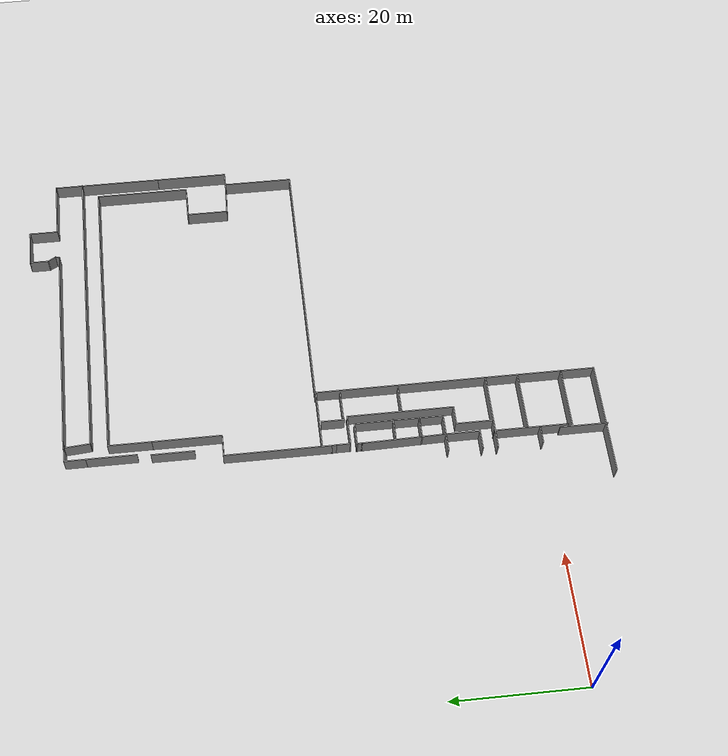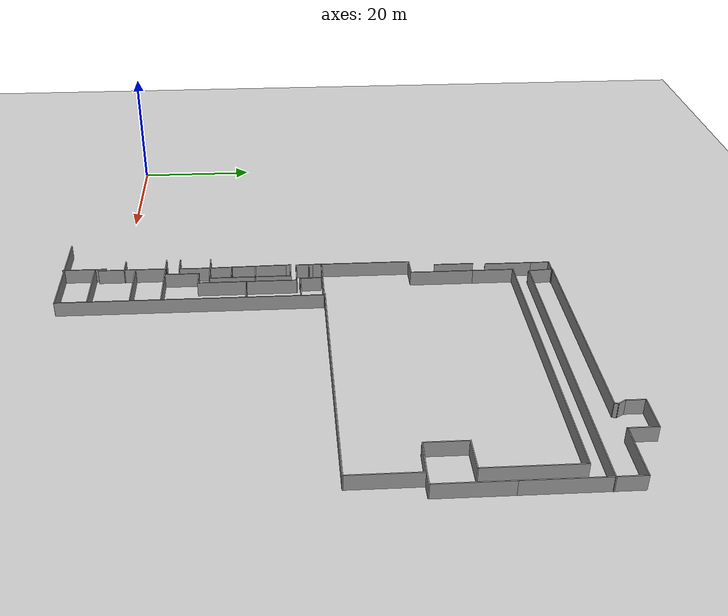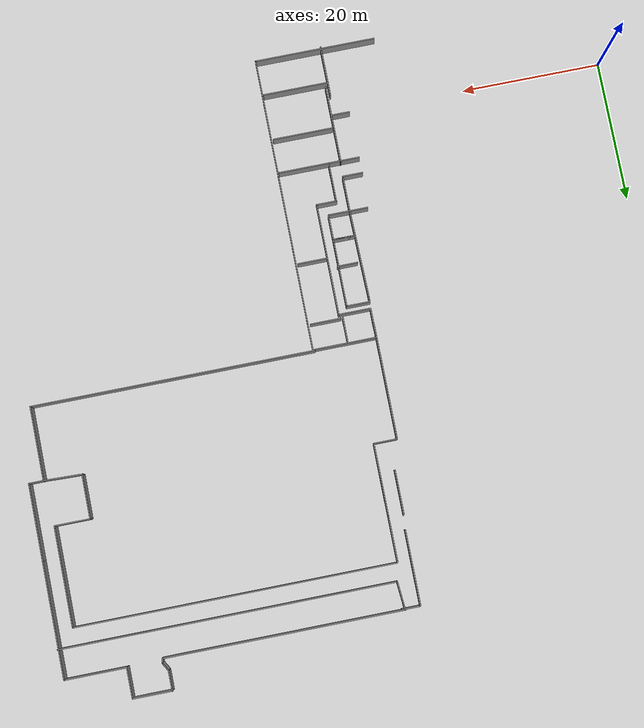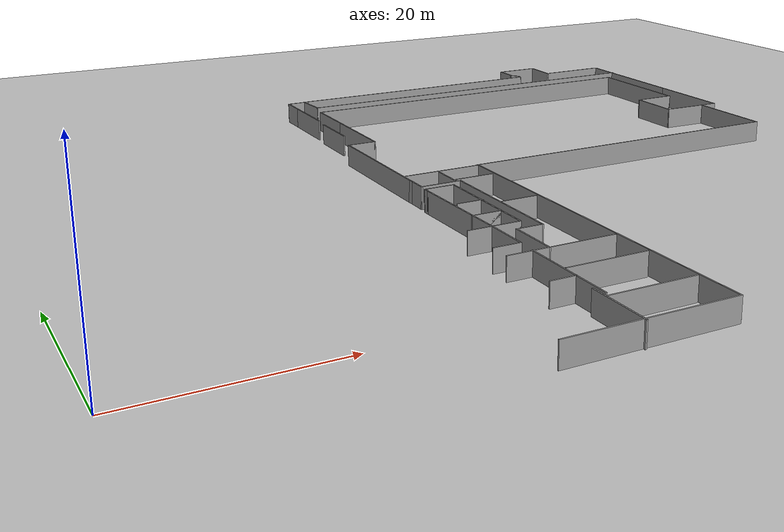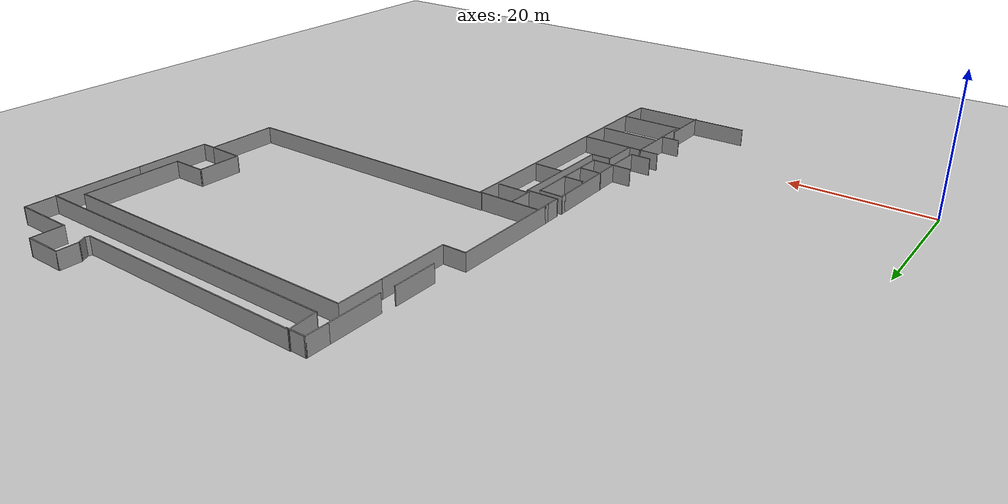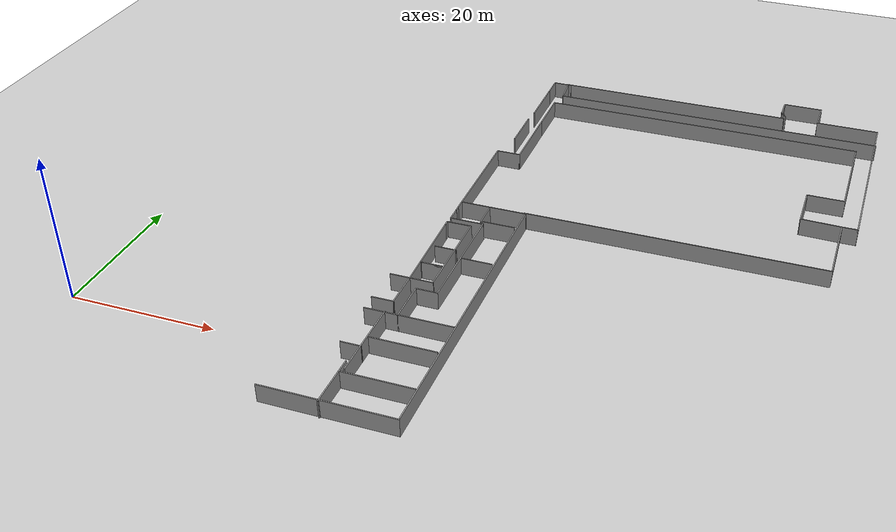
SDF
<sdf version="1.5">
 <world name="default">
  <model name="ground_plane">
   <static>1</static>
   <link name="link">
    <collision name="collision">
     <geometry><plane><normal>0 0 1</normal><size>100 100</size></plane></geometry>
     <surface><friction><ode><mu>100</mu><mu2>50</mu2></ode></friction></surface>
    </collision>
    <visual name="visual">
     <cast_shadows>0</cast_shadows>
     <geometry><plane><normal>0 0 1</normal><size>100 100</size></plane></geometry>
     <material>
      <script><uri>file://media/materials/scripts/gazebo.material</uri><name>Gazebo/Grey</name></script>
     </material>
    </visual>
   </link>
  </model>
  <model name="Wean4Complete">
   <pose>41 33 0 0 -0 0</pose>
   <link name="Wall_0">
    <collision name="Wall_0_Collision">
     <geometry><box><size>34.5 0.15 2.5</size></box></geometry>
     <pose>0 0 1.25 0 -0 0</pose>
    </collision>
    <visual name="Wall_0_Visual">
     <pose>0 0 1.25 0 -0 0</pose>
     <geometry><box><size>34.5 0.15 2.5</size></box></geometry>
     <material>
      <script><uri>file://media/materials/scripts/gazebo.material</uri><name>Gazebo/Grey</name></script>
      <ambient>1 1 1 1</ambient>
     </material>
    </visual>
    <pose>19.3501 38.1931 0 0 -0 0</pose>
   </link>
   <link name="Wall_1">
    <collision name="Wall_1_Collision">
     <geometry><box><size>0.75 0.15 2.5</size></box></geometry>
     <pose>0 0 1.25 0 -0 0</pose>
    </collision>
    <visual name="Wall_1_Visual">
     <pose>0 0 1.25 0 -0 0</pose>
     <geometry><box><size>0.75 0.15 2.5</size></box></geometry>
     <material>
      <script><uri>file://media/materials/scripts/gazebo.material</uri><name>Gazebo/Grey</name></script>
      <ambient>1 1 1 1</ambient>
     </material>
    </visual>
    <pose>36.6027 38.4829 0 0 -0 1.309</pose>
   </link>
   <link name="Wall_10">
    <collision name="Wall_10_Collision">
     <geometry><box><size>2.25 0.15 2.5</size></box></geometry>
     <pose>0 0 1.25 0 -0 0</pose>
    </collision>
    <visual name="Wall_10_Visual">
     <pose>0 0 1.25 0 -0 0</pose>
     <geometry><box><size>2.25 0.15 2.5</size></box></geometry>
     <material>
      <script><uri>file://media/materials/scripts/gazebo.material</uri><name>Gazebo/Grey</name></script>
      <ambient>1 1 1 1</ambient>
     </material>
    </visual>
    <pose>49.4054 10.7418 0 0 -0 3.14159</pose>
   </link>
   <link name="Wall_100">
    <collision name="Wall_100_Collision">
     <geometry><box><size>11.75 0.15 2.5</size></box></geometry>
     <pose>0 0 1.25 0 -0 0</pose>
    </collision>
    <visual name="Wall_100_Visual">
     <pose>0 0 1.25 0 -0 0</pose>
     <geometry><box><size>11.75 0.15 2.5</size></box></geometry>
     <material>
      <script><uri>file://media/materials/scripts/gazebo.material</uri><name>Gazebo/Grey</name></script>
      <ambient>1 1 1 1</ambient>
     </material>
    </visual>
    <pose>1.71451 -25.9001 0 0 -0 3.14159</pose>
   </link>
   <link name="Wall_102">
    <collision name="Wall_102_Collision">
     <geometry><box><size>5.75 0.15 2.5</size></box></geometry>
     <pose>0 0 1.25 0 -0 0</pose>
    </collision>
    <visual name="Wall_102_Visual">
     <pose>0 0 1.25 0 -0 0</pose>
     <geometry><box><size>5.75 0.15 2.5</size></box></geometry>
     <material>
      <script><uri>file://media/materials/scripts/gazebo.material</uri><name>Gazebo/Grey</name></script>
      <ambient>1 1 1 1</ambient>
     </material>
    </visual>
    <pose>0.328372 -23.1001 0 0 -0 1.5708</pose>
   </link>
   <link name="Wall_103">
    <collision name="Wall_103_Collision">
     <geometry><box><size>3 0.15 2.5</size></box></geometry>
     <pose>0 0 1.25 0 -0 0</pose>
    </collision>
    <visual name="Wall_103_Visual">
     <pose>0 0 1.25 0 -0 0</pose>
     <geometry><box><size>3 0.15 2.5</size></box></geometry>
     <material>
      <script><uri>file://media/materials/scripts/gazebo.material</uri><name>Gazebo/Grey</name></script>
      <ambient>1 1 1 1</ambient>
     </material>
    </visual>
    <pose>1.75337 -20.3001 0 0 -0 0</pose>
   </link>
   <link name="Wall_104">
    <collision name="Wall_104_Collision">
     <geometry><box><size>16.25 0.15 2.5</size></box></geometry>
     <pose>0 0 1.25 0 -0 0</pose>
    </collision>
    <visual name="Wall_104_Visual">
     <pose>0 0 1.25 0 -0 0</pose>
     <geometry><box><size>16.25 0.15 2.5</size></box></geometry>
     <material>
      <script><uri>file://media/materials/scripts/gazebo.material</uri><name>Gazebo/Grey</name></script>
      <ambient>1 1 1 1</ambient>
     </material>
    </visual>
    <pose>3.17837 -12.2501 0 0 -0 1.5708</pose>
   </link>
   <link name="Wall_105">
    <collision name="Wall_105_Collision">
     <geometry><box><size>4.75 0.15 2.5</size></box></geometry>
     <pose>0 0 1.25 0 -0 0</pose>
    </collision>
    <visual name="Wall_105_Visual">
     <pose>0 0 1.25 0 -0 0</pose>
     <geometry><box><size>4.75 0.15 2.5</size></box></geometry>
     <material>
      <script><uri>file://media/materials/scripts/gazebo.material</uri><name>Gazebo/Grey</name></script>
      <ambient>1 1 1 1</ambient>
     </material>
    </visual>
    <pose>0.878372 -4.20012 0 0 -0 3.14159</pose>
   </link>
   <link name="Wall_107">
    <collision name="Wall_107_Collision">
     <geometry><box><size>4.5 0.15 2.5</size></box></geometry>
     <pose>0 0 1.25 0 -0 0</pose>
    </collision>
    <visual name="Wall_107_Visual">
     <pose>0 0 1.25 0 -0 0</pose>
     <geometry><box><size>4.5 0.15 2.5</size></box></geometry>
     <material>
      <script><uri>file://media/materials/scripts/gazebo.material</uri><name>Gazebo/Grey</name></script>
      <ambient>1 1 1 1</ambient>
     </material>
    </visual>
    <pose>5.17251 -3.6231 0 0 -0 0</pose>
   </link>
   <link name="Wall_109">
    <collision name="Wall_109_Collision">
     <geometry><box><size>3.5 0.15 2.5</size></box></geometry>
     <pose>0 0 1.25 0 -0 0</pose>
    </collision>
    <visual name="Wall_109_Visual">
     <pose>0 0 1.25 0 -0 0</pose>
     <geometry><box><size>3.5 0.15 2.5</size></box></geometry>
     <material>
      <script><uri>file://media/materials/scripts/gazebo.material</uri><name>Gazebo/Grey</name></script>
      <ambient>1 1 1 1</ambient>
     </material>
    </visual>
    <pose>2.68953 -2.01301 0 0 0 -1.5708</pose>
   </link>
   <link name="Wall_11">
    <collision name="Wall_11_Collision">
     <geometry><box><size>10.75 0.15 2.5</size></box></geometry>
     <pose>0 0 1.25 0 -0 0</pose>
    </collision>
    <visual name="Wall_11_Visual">
     <pose>0 0 1.25 0 -0 0</pose>
     <geometry><box><size>10.75 0.15 2.5</size></box></geometry>
     <material>
      <script><uri>file://media/materials/scripts/gazebo.material</uri><name>Gazebo/Grey</name></script>
      <ambient>1 1 1 1</ambient>
     </material>
    </visual>
    <pose>48.3554 5.44178 0 0 0 -1.5708</pose>
   </link>
   <link name="Wall_111">
    <collision name="Wall_111_Collision">
     <geometry><box><size>4.25 0.15 2.5</size></box></geometry>
     <pose>0 0 1.25 0 -0 0</pose>
    </collision>
    <visual name="Wall_111_Visual">
     <pose>0 0 1.25 0 -0 0</pose>
     <geometry><box><size>4.25 0.15 2.5</size></box></geometry>
     <material>
      <script><uri>file://media/materials/scripts/gazebo.material</uri><name>Gazebo/Grey</name></script>
      <ambient>1 1 1 1</ambient>
     </material>
    </visual>
    <pose>5.36185 -12.4518 0 0 -0 3.14159</pose>
   </link>
   <link name="Wall_113">
    <collision name="Wall_113_Collision">
     <geometry><box><size>3.5 0.15 2.5</size></box></geometry>
     <pose>0 0 1.25 0 -0 0</pose>
    </collision>
    <visual name="Wall_113_Visual">
     <pose>0 0 1.25 0 -0 0</pose>
     <geometry><box><size>3.5 0.15 2.5</size></box></geometry>
     <material>
      <script><uri>file://media/materials/scripts/gazebo.material</uri><name>Gazebo/Grey</name></script>
      <ambient>1 1 1 1</ambient>
     </material>
    </visual>
    <pose>0.155509 -5.16299 0 0 -0 0</pose>
   </link>
   <link name="Wall_114">
    <collision name="Wall_114_Collision">
     <geometry><box><size>13.5 0.15 2.5</size></box></geometry>
     <pose>0 0 1.25 0 -0 0</pose>
    </collision>
    <visual name="Wall_114_Visual">
     <pose>0 0 1.25 0 -0 0</pose>
     <geometry><box><size>13.5 0.15 2.5</size></box></geometry>
     <material>
      <script><uri>file://media/materials/scripts/gazebo.material</uri><name>Gazebo/Grey</name></script>
      <ambient>1 1 1 1</ambient>
     </material>
    </visual>
    <pose>1.83051 -11.838 0 0 0 -1.5708</pose>
   </link>
   <link name="Wall_115">
    <collision name="Wall_115_Collision">
     <geometry><box><size>3.25 0.15 2.5</size></box></geometry>
     <pose>0 0 1.25 0 -0 0</pose>
    </collision>
    <visual name="Wall_115_Visual">
     <pose>0 0 1.25 0 -0 0</pose>
     <geometry><box><size>3.25 0.15 2.5</size></box></geometry>
     <material>
      <script><uri>file://media/materials/scripts/gazebo.material</uri><name>Gazebo/Grey</name></script>
      <ambient>1 1 1 1</ambient>
     </material>
    </visual>
    <pose>0.280509 -18.513 0 0 -0 3.14159</pose>
   </link>
   <link name="Wall_116">
    <collision name="Wall_116_Collision">
     <geometry><box><size>5.25 0.15 2.5</size></box></geometry>
     <pose>0 0 1.25 0 -0 0</pose>
    </collision>
    <visual name="Wall_116_Visual">
     <pose>0 0 1.25 0 -0 0</pose>
     <geometry><box><size>5.25 0.15 2.5</size></box></geometry>
     <material>
      <script><uri>file://media/materials/scripts/gazebo.material</uri><name>Gazebo/Grey</name></script>
      <ambient>1 1 1 1</ambient>
     </material>
    </visual>
    <pose>-1.26949 -21.063 0 0 0 -1.5708</pose>
   </link>
   <link name="Wall_117">
    <collision name="Wall_117_Collision">
     <geometry><box><size>3 0.15 2.5</size></box></geometry>
     <pose>0 0 1.25 0 -0 0</pose>
    </collision>
    <visual name="Wall_117_Visual">
     <pose>0 0 1.25 0 -0 0</pose>
     <geometry><box><size>3 0.15 2.5</size></box></geometry>
     <material>
      <script><uri>file://media/materials/scripts/gazebo.material</uri><name>Gazebo/Grey</name></script>
      <ambient>1 1 1 1</ambient>
     </material>
    </visual>
    <pose>-2.69449 -23.613 0 0 -0 3.14159</pose>
   </link>
   <link name="Wall_119">
    <collision name="Wall_119_Collision">
     <geometry><box><size>3 0.15 2.5</size></box></geometry>
     <pose>0 0 1.25 0 -0 0</pose>
    </collision>
    <visual name="Wall_119_Visual">
     <pose>0 0 1.25 0 -0 0</pose>
     <geometry><box><size>3 0.15 2.5</size></box></geometry>
     <material>
      <script><uri>file://media/materials/scripts/gazebo.material</uri><name>Gazebo/Grey</name></script>
      <ambient>1 1 1 1</ambient>
     </material>
    </visual>
    <pose>0.316145 -14.9156 0 0 -0 0</pose>
   </link>
   <link name="Wall_12">
    <collision name="Wall_12_Collision">
     <geometry><box><size>41 0.15 2.5</size></box></geometry>
     <pose>0 0 1.25 0 -0 0</pose>
    </collision>
    <visual name="Wall_12_Visual">
     <pose>0 0 1.25 0 -0 0</pose>
     <geometry><box><size>41 0.15 2.5</size></box></geometry>
     <material>
      <script><uri>file://media/materials/scripts/gazebo.material</uri><name>Gazebo/Grey</name></script>
      <ambient>1 1 1 1</ambient>
     </material>
    </visual>
    <pose>27.9304 0.141784 0 0 -0 3.14159</pose>
   </link>
   <link name="Wall_120">
    <collision name="Wall_120_Collision">
     <geometry><box><size>3.25 0.15 2.5</size></box></geometry>
     <pose>0 0 1.25 0 -0 0</pose>
    </collision>
    <visual name="Wall_120_Visual">
     <pose>0 0 1.25 0 -0 0</pose>
     <geometry><box><size>3.25 0.15 2.5</size></box></geometry>
     <material>
      <script><uri>file://media/materials/scripts/gazebo.material</uri><name>Gazebo/Grey</name></script>
      <ambient>1 1 1 1</ambient>
     </material>
    </visual>
    <pose>0.191145 -14.9156 0 0 -0 3.14159</pose>
   </link>
   <link name="Wall_122">
    <collision name="Wall_122_Collision">
     <geometry><box><size>3 0.15 2.5</size></box></geometry>
     <pose>0 0 1.25 0 -0 0</pose>
    </collision>
    <visual name="Wall_122_Visual">
     <pose>0 0 1.25 0 -0 0</pose>
     <geometry><box><size>3 0.15 2.5</size></box></geometry>
     <material>
      <script><uri>file://media/materials/scripts/gazebo.material</uri><name>Gazebo/Grey</name></script>
      <ambient>1 1 1 1</ambient>
     </material>
    </visual>
    <pose>0.545917 -11.0146 0 0 -0 3.14159</pose>
   </link>
   <link name="Wall_124">
    <collision name="Wall_124_Collision">
     <geometry><box><size>12.7839 0.15 2.5</size></box></geometry>
     <pose>0 0 1.25 0 -0 0</pose>
    </collision>
    <visual name="Wall_124_Visual">
     <pose>0 0 1.25 0 -0 0</pose>
     <geometry><box><size>12.7839 0.15 2.5</size></box></geometry>
     <material>
      <script><uri>file://media/materials/scripts/gazebo.material</uri><name>Gazebo/Grey</name></script>
      <ambient>1 1 1 1</ambient>
     </material>
    </visual>
    <pose>-1.39449 -12.1973 0 0 0 -1.55101</pose>
   </link>
   <link name="Wall_125">
    <collision name="Wall_125_Collision">
     <geometry><box><size>2.75 0.15 2.5</size></box></geometry>
     <pose>0 0 1.25 0 -0 0</pose>
    </collision>
    <visual name="Wall_125_Visual">
     <pose>0 0 1.25 0 -0 0</pose>
     <geometry><box><size>2.75 0.15 2.5</size></box></geometry>
     <material>
      <script><uri>file://media/materials/scripts/gazebo.material</uri><name>Gazebo/Grey</name></script>
      <ambient>1 1 1 1</ambient>
     </material>
    </visual>
    <pose>-2.56949 -18.513 0 0 -0 3.14159</pose>
   </link>
   <link name="Wall_13">
    <collision name="Wall_13_Collision">
     <geometry><box><size>0.16 0.15 2.5</size></box></geometry>
     <pose>0 0 1.25 0 -0 0</pose>
    </collision>
    <visual name="Wall_13_Visual">
     <pose>0 0 1.25 0 -0 0</pose>
     <geometry><box><size>0.16 0.15 2.5</size></box></geometry>
     <material>
      <script><uri>file://media/materials/scripts/gazebo.material</uri><name>Gazebo/Grey</name></script>
      <ambient>1 1 1 1</ambient>
     </material>
    </visual>
    <pose>7.51037 0.141784 0 0 -0 0</pose>
   </link>
   <link name="Wall_15">
    <collision name="Wall_15_Collision">
     <geometry><box><size>17.5 0.15 2.5</size></box></geometry>
     <pose>0 0 1.25 0 -0 0</pose>
    </collision>
    <visual name="Wall_15_Visual">
     <pose>0 0 1.25 0 -0 0</pose>
     <geometry><box><size>17.5 0.15 2.5</size></box></geometry>
     <material>
      <script><uri>file://media/materials/scripts/gazebo.material</uri><name>Gazebo/Grey</name></script>
      <ambient>1 1 1 1</ambient>
     </material>
    </visual>
    <pose>-0.933063 -42.5844 0 0 -0 3.14159</pose>
   </link>
   <link name="Wall_152">
    <collision name="Wall_152_Collision">
     <geometry><box><size>2.75 0.15 2.5</size></box></geometry>
     <pose>0 0 1.25 0 -0 0</pose>
    </collision>
    <visual name="Wall_152_Visual">
     <pose>0 0 1.25 0 -0 0</pose>
     <geometry><box><size>2.75 0.15 2.5</size></box></geometry>
     <material>
      <script><uri>file://media/materials/scripts/gazebo.material</uri><name>Gazebo/Grey</name></script>
      <ambient>1 1 1 1</ambient>
     </material>
    </visual>
    <pose>-2.68331 -32.6756 0 0 -0 0</pose>
   </link>
   <link name="Wall_154">
    <collision name="Wall_154_Collision">
     <geometry><box><size>11.25 0.15 2.5</size></box></geometry>
     <pose>0 0 1.25 0 -0 0</pose>
    </collision>
    <visual name="Wall_154_Visual">
     <pose>0 0 1.25 0 -0 0</pose>
     <geometry><box><size>11.25 0.15 2.5</size></box></geometry>
     <material>
      <script><uri>file://media/materials/scripts/gazebo.material</uri><name>Gazebo/Grey</name></script>
      <ambient>1 1 1 1</ambient>
     </material>
    </visual>
    <pose>-1.41683 -31.3475 0 0 0 -1.5708</pose>
   </link>
   <link name="Wall_159">
    <collision name="Wall_159_Collision">
     <geometry><box><size>2.25 0.15 2.5</size></box></geometry>
     <pose>0 0 1.25 0 -0 0</pose>
    </collision>
    <visual name="Wall_159_Visual">
     <pose>0 0 1.25 0 -0 0</pose>
     <geometry><box><size>2.25 0.15 2.5</size></box></geometry>
     <material>
      <script><uri>file://media/materials/scripts/gazebo.material</uri><name>Gazebo/Grey</name></script>
      <ambient>1 1 1 1</ambient>
     </material>
    </visual>
    <pose>-1.42163 -3.15012 0 0 -0 1.5708</pose>
   </link>
   <link name="Wall_160">
    <collision name="Wall_160_Collision">
     <geometry><box><size>0.819298 0.15 2.5</size></box></geometry>
     <pose>0 0 1.25 0 -0 0</pose>
    </collision>
    <visual name="Wall_160_Visual">
     <pose>0 0 1.25 0 -0 0</pose>
     <geometry><box><size>0.819298 0.15 2.5</size></box></geometry>
     <material>
      <script><uri>file://media/materials/scripts/gazebo.material</uri><name>Gazebo/Grey</name></script>
      <ambient>1 1 1 1</ambient>
     </material>
    </visual>
    <pose>-1.43719 -1.76583 0 0 -0 1.6173</pose>
   </link>
   <link name="Wall_19">
    <collision name="Wall_19_Collision">
     <geometry><box><size>42.75 0.15 2.5</size></box></geometry>
     <pose>0 0 1.25 0 -0 0</pose>
    </collision>
    <visual name="Wall_19_Visual">
     <pose>0 0 1.25 0 -0 0</pose>
     <geometry><box><size>42.75 0.15 2.5</size></box></geometry>
     <material>
      <script><uri>file://media/materials/scripts/gazebo.material</uri><name>Gazebo/Grey</name></script>
      <ambient>1 1 1 1</ambient>
     </material>
    </visual>
    <pose>7.74194 -21.2844 0 0 -0 1.5708</pose>
   </link>
   <link name="Wall_2">
    <collision name="Wall_2_Collision">
     <geometry><box><size>1.5 0.15 2.5</size></box></geometry>
     <pose>0 0 1.25 0 -0 0</pose>
    </collision>
    <visual name="Wall_2_Visual">
     <pose>0 0 1.25 0 -0 0</pose>
     <geometry><box><size>1.5 0.15 2.5</size></box></geometry>
     <material>
      <script><uri>file://media/materials/scripts/gazebo.material</uri><name>Gazebo/Grey</name></script>
      <ambient>1 1 1 1</ambient>
     </material>
    </visual>
    <pose>36.3429 39.3572 0 0 -0 2.0944</pose>
   </link>
   <link name="Wall_21">
    <collision name="Wall_21_Collision">
     <geometry><box><size>9.25 0.15 2.5</size></box></geometry>
     <pose>0 0 1.25 0 -0 0</pose>
    </collision>
    <visual name="Wall_21_Visual">
     <pose>0 0 1.25 0 -0 0</pose>
     <geometry><box><size>9.25 0.15 2.5</size></box></geometry>
     <material>
      <script><uri>file://media/materials/scripts/gazebo.material</uri><name>Gazebo/Grey</name></script>
      <ambient>1 1 1 1</ambient>
     </material>
    </visual>
    <pose>3.19194 0.015563 0 0 -0 3.14159</pose>
   </link>
   <link name="Wall_23">
    <collision name="Wall_23_Collision">
     <geometry><box><size>16.25 0.15 2.5</size></box></geometry>
     <pose>0 0 1.25 0 -0 0</pose>
    </collision>
    <visual name="Wall_23_Visual">
     <pose>0 0 1.25 0 -0 0</pose>
     <geometry><box><size>16.25 0.15 2.5</size></box></geometry>
     <material>
      <script><uri>file://media/materials/scripts/gazebo.material</uri><name>Gazebo/Grey</name></script>
      <ambient>1 1 1 1</ambient>
     </material>
    </visual>
    <pose>-1.45274 6.61846 0 0 -0 1.5708</pose>
   </link>
   <link name="Wall_24">
    <collision name="Wall_24_Collision">
     <geometry><box><size>3.5 0.15 2.5</size></box></geometry>
     <pose>0 0 1.25 0 -0 0</pose>
    </collision>
    <visual name="Wall_24_Visual">
     <pose>0 0 1.25 0 -0 0</pose>
     <geometry><box><size>3.5 0.15 2.5</size></box></geometry>
     <material>
      <script><uri>file://media/materials/scripts/gazebo.material</uri><name>Gazebo/Grey</name></script>
      <ambient>1 1 1 1</ambient>
     </material>
    </visual>
    <pose>0.222256 14.6685 0 0 -0 0</pose>
   </link>
   <link name="Wall_25">
    <collision name="Wall_25_Collision">
     <geometry><box><size>10.5 0.15 2.5</size></box></geometry>
     <pose>0 0 1.25 0 -0 0</pose>
    </collision>
    <visual name="Wall_25_Visual">
     <pose>0 0 1.25 0 -0 0</pose>
     <geometry><box><size>10.5 0.15 2.5</size></box></geometry>
     <material>
      <script><uri>file://media/materials/scripts/gazebo.material</uri><name>Gazebo/Grey</name></script>
      <ambient>1 1 1 1</ambient>
     </material>
    </visual>
    <pose>1.89726 19.8435 0 0 -0 1.5708</pose>
   </link>
   <link name="Wall_27">
    <collision name="Wall_27_Collision">
     <geometry><box><size>6.75 0.15 2.5</size></box></geometry>
     <pose>0 0 1.25 0 -0 0</pose>
    </collision>
    <visual name="Wall_27_Visual">
     <pose>0 0 1.25 0 -0 0</pose>
     <geometry><box><size>6.75 0.15 2.5</size></box></geometry>
     <material>
      <script><uri>file://media/materials/scripts/gazebo.material</uri><name>Gazebo/Grey</name></script>
      <ambient>1 1 1 1</ambient>
     </material>
    </visual>
    <pose>1.89726 28.3185 0 0 -0 1.5708</pose>
   </link>
   <link name="Wall_28">
    <collision name="Wall_28_Collision">
     <geometry><box><size>46.25 0.15 2.5</size></box></geometry>
     <pose>0 0 1.25 0 -0 0</pose>
    </collision>
    <visual name="Wall_28_Visual">
     <pose>0 0 1.25 0 -0 0</pose>
     <geometry><box><size>46.25 0.15 2.5</size></box></geometry>
     <material>
      <script><uri>file://media/materials/scripts/gazebo.material</uri><name>Gazebo/Grey</name></script>
      <ambient>1 1 1 1</ambient>
     </material>
    </visual>
    <pose>24.9473 31.6185 0 0 -0 0</pose>
   </link>
   <link name="Wall_29">
    <collision name="Wall_29_Collision">
     <geometry><box><size>14.5 0.15 2.5</size></box></geometry>
     <pose>0 0 1.25 0 -0 0</pose>
    </collision>
    <visual name="Wall_29_Visual">
     <pose>0 0 1.25 0 -0 0</pose>
     <geometry><box><size>14.5 0.15 2.5</size></box></geometry>
     <material>
      <script><uri>file://media/materials/scripts/gazebo.material</uri><name>Gazebo/Grey</name></script>
      <ambient>1 1 1 1</ambient>
     </material>
    </visual>
    <pose>47.9973 24.4435 0 0 0 -1.5708</pose>
   </link>
   <link name="Wall_3">
    <collision name="Wall_3_Collision">
     <geometry><box><size>3 0.15 2.5</size></box></geometry>
     <pose>0 0 1.25 0 -0 0</pose>
    </collision>
    <visual name="Wall_3_Visual">
     <pose>0 0 1.25 0 -0 0</pose>
     <geometry><box><size>3 0.15 2.5</size></box></geometry>
     <material>
      <script><uri>file://media/materials/scripts/gazebo.material</uri><name>Gazebo/Grey</name></script>
      <ambient>1 1 1 1</ambient>
     </material>
    </visual>
    <pose>36.0054 41.3668 0 0 -0 1.5708</pose>
   </link>
   <link name="Wall_30">
    <collision name="Wall_30_Collision">
     <geometry><box><size>5.25 0.15 2.5</size></box></geometry>
     <pose>0 0 1.25 0 -0 0</pose>
    </collision>
    <visual name="Wall_30_Visual">
     <pose>0 0 1.25 0 -0 0</pose>
     <geometry><box><size>5.25 0.15 2.5</size></box></geometry>
     <material>
      <script><uri>file://media/materials/scripts/gazebo.material</uri><name>Gazebo/Grey</name></script>
      <ambient>1 1 1 1</ambient>
     </material>
    </visual>
    <pose>45.4473 17.2685 0 0 -0 3.14159</pose>
   </link>
   <link name="Wall_31">
    <collision name="Wall_31_Collision">
     <geometry><box><size>6.5 0.15 2.5</size></box></geometry>
     <pose>0 0 1.25 0 -0 0</pose>
    </collision>
    <visual name="Wall_31_Visual">
     <pose>0 0 1.25 0 -0 0</pose>
     <geometry><box><size>6.5 0.15 2.5</size></box></geometry>
     <material>
      <script><uri>file://media/materials/scripts/gazebo.material</uri><name>Gazebo/Grey</name></script>
      <ambient>1 1 1 1</ambient>
     </material>
    </visual>
    <pose>42.8973 14.0935 0 0 0 -1.5708</pose>
   </link>
   <link name="Wall_32">
    <collision name="Wall_32_Collision">
     <geometry><box><size>5.61097 0.15 2.5</size></box></geometry>
     <pose>0 0 1.25 0 -0 0</pose>
    </collision>
    <visual name="Wall_32_Visual">
     <pose>0 0 1.25 0 -0 0</pose>
     <geometry><box><size>5.61097 0.15 2.5</size></box></geometry>
     <material>
      <script><uri>file://media/materials/scripts/gazebo.material</uri><name>Gazebo/Grey</name></script>
      <ambient>1 1 1 1</ambient>
     </material>
    </visual>
    <pose>45.6263 10.8301 0 0 0 -0.032358</pose>
   </link>
   <link name="Wall_34">
    <collision name="Wall_34_Collision">
     <geometry><box><size>48.25 0.15 2.5</size></box></geometry>
     <pose>0 0 1.25 0 -0 0</pose>
    </collision>
    <visual name="Wall_34_Visual">
     <pose>0 0 1.25 0 -0 0</pose>
     <geometry><box><size>48.25 0.15 2.5</size></box></geometry>
     <material>
      <script><uri>file://media/materials/scripts/gazebo.material</uri><name>Gazebo/Grey</name></script>
      <ambient>1 1 1 1</ambient>
     </material>
    </visual>
    <pose>26.5409 34.1867 0 0 -0 3.14159</pose>
   </link>
   <link name="Wall_35">
    <collision name="Wall_35_Collision">
     <geometry><box><size>4.16884 0.15 2.5</size></box></geometry>
     <pose>0 0 1.25 0 -0 0</pose>
    </collision>
    <visual name="Wall_35_Visual">
     <pose>0 0 1.25 0 -0 0</pose>
     <geometry><box><size>4.16884 0.15 2.5</size></box></geometry>
     <material>
      <script><uri>file://media/materials/scripts/gazebo.material</uri><name>Gazebo/Grey</name></script>
      <ambient>1 1 1 1</ambient>
     </material>
    </visual>
    <pose>2.33301 36.1899 0 0 -0 1.64947</pose>
   </link>
   <link name="Wall_4">
    <collision name="Wall_4_Collision">
     <geometry><box><size>5.75 0.15 2.5</size></box></geometry>
     <pose>0 0 1.25 0 -0 0</pose>
    </collision>
    <visual name="Wall_4_Visual">
     <pose>0 0 1.25 0 -0 0</pose>
     <geometry><box><size>5.75 0.15 2.5</size></box></geometry>
     <material>
      <script><uri>file://media/materials/scripts/gazebo.material</uri><name>Gazebo/Grey</name></script>
      <ambient>1 1 1 1</ambient>
     </material>
    </visual>
    <pose>38.8054 42.7918 0 0 -0 0</pose>
   </link>
   <link name="Wall_5">
    <collision name="Wall_5_Collision">
     <geometry><box><size>4.5 0.15 2.5</size></box></geometry>
     <pose>0 0 1.25 0 -0 0</pose>
    </collision>
    <visual name="Wall_5_Visual">
     <pose>0 0 1.25 0 -0 0</pose>
     <geometry><box><size>4.5 0.15 2.5</size></box></geometry>
     <material>
      <script><uri>file://media/materials/scripts/gazebo.material</uri><name>Gazebo/Grey</name></script>
      <ambient>1 1 1 1</ambient>
     </material>
    </visual>
    <pose>41.6054 40.6168 0 0 0 -1.5708</pose>
   </link>
   <link name="Wall_59">
    <collision name="Wall_59_Collision">
     <geometry><box><size>3.25 0.15 2.5</size></box></geometry>
     <pose>0 0 1.25 0 -0 0</pose>
    </collision>
    <visual name="Wall_59_Visual">
     <pose>0 0 1.25 0 -0 0</pose>
     <geometry><box><size>3.25 0.15 2.5</size></box></geometry>
     <material>
      <script><uri>file://media/materials/scripts/gazebo.material</uri><name>Gazebo/Grey</name></script>
      <ambient>1 1 1 1</ambient>
     </material>
    </visual>
    <pose>-0.032387 36.552 0 0 -0 1.5708</pose>
   </link>
   <link name="Wall_6">
    <collision name="Wall_6_Collision">
     <geometry><box><size>9 0.15 2.5</size></box></geometry>
     <pose>0 0 1.25 0 -0 0</pose>
    </collision>
    <visual name="Wall_6_Visual">
     <pose>0 0 1.25 0 -0 0</pose>
     <geometry><box><size>9 0.15 2.5</size></box></geometry>
     <material>
      <script><uri>file://media/materials/scripts/gazebo.material</uri><name>Gazebo/Grey</name></script>
      <ambient>1 1 1 1</ambient>
     </material>
    </visual>
    <pose>46.0304 38.4418 0 0 -0 0</pose>
   </link>
   <link name="Wall_60">
    <collision name="Wall_60_Collision">
     <geometry><box><size>2.75 0.15 2.5</size></box></geometry>
     <pose>0 0 1.25 0 -0 0</pose>
    </collision>
    <visual name="Wall_60_Visual">
     <pose>0 0 1.25 0 -0 0</pose>
     <geometry><box><size>2.75 0.15 2.5</size></box></geometry>
     <material>
      <script><uri>file://media/materials/scripts/gazebo.material</uri><name>Gazebo/Grey</name></script>
      <ambient>1 1 1 1</ambient>
     </material>
    </visual>
    <pose>1.26761 38.102 0 0 -0 0</pose>
   </link>
   <link name="Wall_62">
    <collision name="Wall_62_Collision">
     <geometry><box><size>7.75 0.15 2.5</size></box></geometry>
     <pose>0 0 1.25 0 -0 0</pose>
    </collision>
    <visual name="Wall_62_Visual">
     <pose>0 0 1.25 0 -0 0</pose>
     <geometry><box><size>7.75 0.15 2.5</size></box></geometry>
     <material>
      <script><uri>file://media/materials/scripts/gazebo.material</uri><name>Gazebo/Grey</name></script>
      <ambient>1 1 1 1</ambient>
     </material>
    </visual>
    <pose>-0.032387 31.202 0 0 0 -1.5708</pose>
   </link>
   <link name="Wall_7">
    <collision name="Wall_7_Collision">
     <geometry><box><size>16.75 0.15 2.5</size></box></geometry>
     <pose>0 0 1.25 0 -0 0</pose>
    </collision>
    <visual name="Wall_7_Visual">
     <pose>0 0 1.25 0 -0 0</pose>
     <geometry><box><size>16.75 0.15 2.5</size></box></geometry>
     <material>
      <script><uri>file://media/materials/scripts/gazebo.material</uri><name>Gazebo/Grey</name></script>
      <ambient>1 1 1 1</ambient>
     </material>
    </visual>
    <pose>50.4554 30.1418 0 0 0 -1.5708</pose>
   </link>
   <link name="Wall_83">
    <collision name="Wall_83_Collision">
     <geometry><box><size>6.5 0.15 2.5</size></box></geometry>
     <pose>0 0 1.25 0 -0 0</pose>
    </collision>
    <visual name="Wall_83_Visual">
     <pose>0 0 1.25 0 -0 0</pose>
     <geometry><box><size>6.5 0.15 2.5</size></box></geometry>
     <material>
      <script><uri>file://media/materials/scripts/gazebo.material</uri><name>Gazebo/Grey</name></script>
      <ambient>1 1 1 1</ambient>
     </material>
    </visual>
    <pose>-0.271058 22.0964 0 0 -0 1.5708</pose>
   </link>
   <link name="Wall_86">
    <collision name="Wall_86_Collision">
     <geometry><box><size>0.75 0.15 2.5</size></box></geometry>
     <pose>0 0 1.25 0 -0 0</pose>
    </collision>
    <visual name="Wall_86_Visual">
     <pose>0 0 1.25 0 -0 0</pose>
     <geometry><box><size>0.75 0.15 2.5</size></box></geometry>
     <material>
      <script><uri>file://media/materials/scripts/gazebo.material</uri><name>Gazebo/Grey</name></script>
      <ambient>1 1 1 1</ambient>
     </material>
    </visual>
    <pose>-1.51949 -5.5816 0 0 -0 1.5708</pose>
   </link>
   <link name="Wall_9">
    <collision name="Wall_9_Collision">
     <geometry><box><size>11.25 0.15 2.5</size></box></geometry>
     <pose>0 0 1.25 0 -0 0</pose>
    </collision>
    <visual name="Wall_9_Visual">
     <pose>0 0 1.25 0 -0 0</pose>
     <geometry><box><size>11.25 0.15 2.5</size></box></geometry>
     <material>
      <script><uri>file://media/materials/scripts/gazebo.material</uri><name>Gazebo/Grey</name></script>
      <ambient>1 1 1 1</ambient>
     </material>
    </visual>
    <pose>50.4554 16.2918 0 0 0 -1.5708</pose>
   </link>
   <link name="Wall_93">
    <collision name="Wall_93_Collision">
     <geometry><box><size>7.25 0.15 2.5</size></box></geometry>
     <pose>0 0 1.25 0 -0 0</pose>
    </collision>
    <visual name="Wall_93_Visual">
     <pose>0 0 1.25 0 -0 0</pose>
     <geometry><box><size>7.25 0.15 2.5</size></box></geometry>
     <material>
      <script><uri>file://media/materials/scripts/gazebo.material</uri><name>Gazebo/Grey</name></script>
      <ambient>1 1 1 1</ambient>
     </material>
    </visual>
    <pose>-1.84957 -39.2398 0 0 0 -1.5708</pose>
   </link>
   <link name="Wall_96">
    <collision name="Wall_96_Collision">
     <geometry><box><size>9.5 0.15 2.5</size></box></geometry>
     <pose>0 0 1.25 0 -0 0</pose>
    </collision>
    <visual name="Wall_96_Visual">
     <pose>0 0 1.25 0 -0 0</pose>
     <geometry><box><size>9.5 0.15 2.5</size></box></geometry>
     <material>
      <script><uri>file://media/materials/scripts/gazebo.material</uri><name>Gazebo/Grey</name></script>
      <ambient>1 1 1 1</ambient>
     </material>
    </visual>
    <pose>2.84753 -37.5006 0 0 -0 0</pose>
   </link>
   <link name="Wall_98">
    <collision name="Wall_98_Collision">
     <geometry><box><size>8.75 0.15 2.5</size></box></geometry>
     <pose>0 0 1.25 0 -0 0</pose>
    </collision>
    <visual name="Wall_98_Visual">
     <pose>0 0 1.25 0 -0 0</pose>
     <geometry><box><size>8.75 0.15 2.5</size></box></geometry>
     <material>
      <script><uri>file://media/materials/scripts/gazebo.material</uri><name>Gazebo/Grey</name></script>
      <ambient>1 1 1 1</ambient>
     </material>
    </visual>
    <pose>3.11185 -30.8278 0 0 -0 3.14159</pose>
   </link>
   <static>1</static>
  </model>
 </world>
</sdf>
